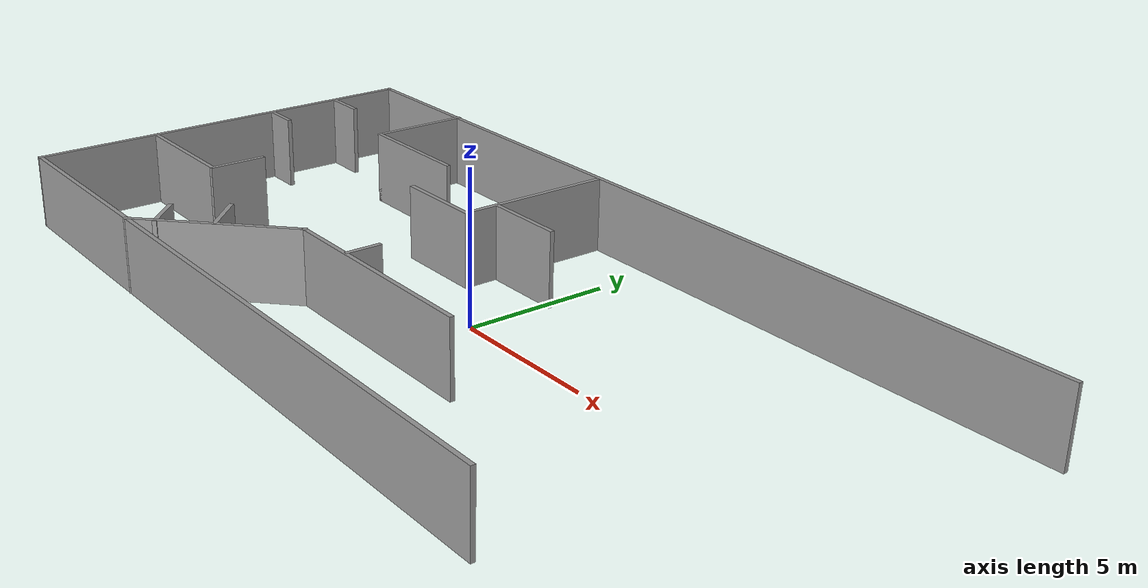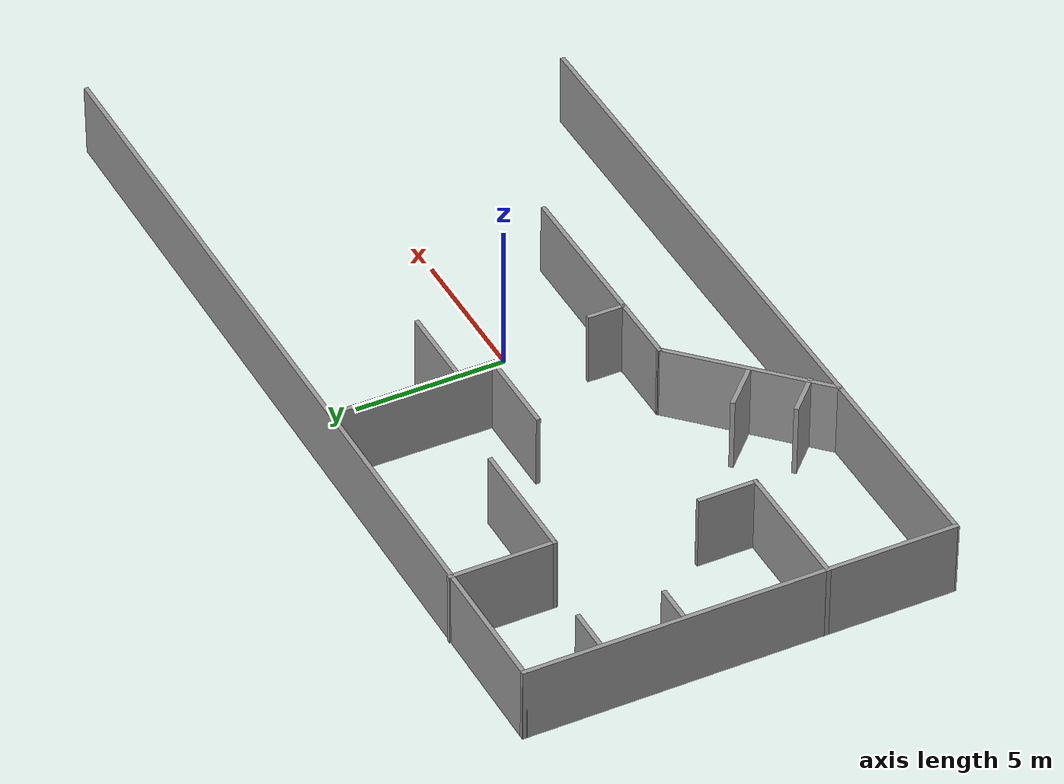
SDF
<sdf version="1.7">
 <model name="environment2">
  <link name="Wall_1">
   <pose>-0.014934 7.01964 0 0 -0 0</pose>
   <visual name="Wall_1_Visual">
    <pose>0 0 1.25 0 -0 0</pose>
    <geometry><box><size>30.5 0.15 2.5</size></box></geometry>
    <material>
     <script><uri>file://media/materials/scripts/gazebo.material</uri><name>Gazebo/Grey</name></script>
     <ambient>1 1 1 1</ambient>
     <shader type="pixel"/>
    </material>
    <meta><layer>0</layer></meta>
   </visual>
   <collision name="Wall_1_Collision">
    <pose>0 0 1.25 0 -0 0</pose>
    <geometry><box><size>30.5 0.15 2.5</size></box></geometry>
    <surface>
     <friction>
      <ode><mu>1</mu><mu2>1</mu2><fdir1>0 0 0</fdir1><slip1>0</slip1><slip2>0</slip2></ode>
      <torsional>
       <coefficient>1</coefficient>
       <patch_radius>0</patch_radius>
       <surface_radius>0</surface_radius>
       <use_patch_radius>1</use_patch_radius>
       <ode><slip>0</slip></ode>
      </torsional>
     </friction>
     <bounce><restitution_coefficient>0</restitution_coefficient><threshold>1e+06</threshold></bounce>
     <contact>
      <collide_without_contact>0</collide_without_contact>
      <collide_without_contact_bitmask>1</collide_without_contact_bitmask>
      <collide_bitmask>1</collide_bitmask>
      <ode>
       <soft_cfm>0</soft_cfm>
       <soft_erp>0.2</soft_erp>
       <kp>1e+13</kp>
       <kd>1</kd>
       <max_vel>0.01</max_vel>
       <min_depth>0</min_depth>
      </ode>
      <bullet>
       <split_impulse>1</split_impulse>
       <split_impulse_penetration_threshold>-0.01</split_impulse_penetration_threshold>
       <soft_cfm>0</soft_cfm>
       <soft_erp>0.2</soft_erp>
       <kp>1e+13</kp>
       <kd>1</kd>
      </bullet>
     </contact>
    </surface>
   </collision>
  </link>
  <link name="Wall_10">
   <pose>-15.1867 0.007115 0 0 0 -1.57033</pose>
   <visual name="Wall_10_Visual">
    <pose>0 0 1.25 0 -0 0</pose>
    <geometry><box><size>14.1751 0.15 2.5</size></box></geometry>
    <material>
     <script><uri>file://media/materials/scripts/gazebo.material</uri><name>Gazebo/Grey</name></script>
     <ambient>1 1 1 1</ambient>
     <shader type="pixel"/>
    </material>
    <meta><layer>0</layer></meta>
   </visual>
   <collision name="Wall_10_Collision">
    <pose>0 0 1.25 0 -0 0</pose>
    <geometry><box><size>14.1751 0.15 2.5</size></box></geometry>
    <surface>
     <friction>
      <ode><mu>1</mu><mu2>1</mu2><fdir1>0 0 0</fdir1><slip1>0</slip1><slip2>0</slip2></ode>
      <torsional>
       <coefficient>1</coefficient>
       <patch_radius>0</patch_radius>
       <surface_radius>0</surface_radius>
       <use_patch_radius>1</use_patch_radius>
       <ode><slip>0</slip></ode>
      </torsional>
     </friction>
     <bounce><restitution_coefficient>0</restitution_coefficient><threshold>1e+06</threshold></bounce>
     <contact>
      <collide_without_contact>0</collide_without_contact>
      <collide_without_contact_bitmask>1</collide_without_contact_bitmask>
      <collide_bitmask>1</collide_bitmask>
      <ode>
       <soft_cfm>0</soft_cfm>
       <soft_erp>0.2</soft_erp>
       <kp>1e+13</kp>
       <kd>1</kd>
       <max_vel>0.01</max_vel>
       <min_depth>0</min_depth>
      </ode>
      <bullet>
       <split_impulse>1</split_impulse>
       <split_impulse_penetration_threshold>-0.01</split_impulse_penetration_threshold>
       <soft_cfm>0</soft_cfm>
       <soft_erp>0.2</soft_erp>
       <kp>1e+13</kp>
       <kd>1</kd>
      </bullet>
     </contact>
    </surface>
   </collision>
  </link>
  <link name="Wall_13">
   <pose>-10.5995 5.38344 0 0 0 -1.5708</pose>
   <visual name="Wall_13_Visual">
    <pose>0 0 1.25 0 -0 0</pose>
    <geometry><box><size>3.5 0.15 2.5</size></box></geometry>
    <material>
     <script><uri>file://media/materials/scripts/gazebo.material</uri><name>Gazebo/Grey</name></script>
     <ambient>1 1 1 1</ambient>
     <shader type="pixel"/>
    </material>
    <meta><layer>0</layer></meta>
   </visual>
   <collision name="Wall_13_Collision">
    <pose>0 0 1.25 0 -0 0</pose>
    <geometry><box><size>3.5 0.15 2.5</size></box></geometry>
    <surface>
     <friction>
      <ode><mu>1</mu><mu2>1</mu2><fdir1>0 0 0</fdir1><slip1>0</slip1><slip2>0</slip2></ode>
      <torsional>
       <coefficient>1</coefficient>
       <patch_radius>0</patch_radius>
       <surface_radius>0</surface_radius>
       <use_patch_radius>1</use_patch_radius>
       <ode><slip>0</slip></ode>
      </torsional>
     </friction>
     <bounce><restitution_coefficient>0</restitution_coefficient><threshold>1e+06</threshold></bounce>
     <contact>
      <collide_without_contact>0</collide_without_contact>
      <collide_without_contact_bitmask>1</collide_without_contact_bitmask>
      <collide_bitmask>1</collide_bitmask>
      <ode>
       <soft_cfm>0</soft_cfm>
       <soft_erp>0.2</soft_erp>
       <kp>1e+13</kp>
       <kd>1</kd>
       <max_vel>0.01</max_vel>
       <min_depth>0</min_depth>
      </ode>
      <bullet>
       <split_impulse>1</split_impulse>
       <split_impulse_penetration_threshold>-0.01</split_impulse_penetration_threshold>
       <soft_cfm>0</soft_cfm>
       <soft_erp>0.2</soft_erp>
       <kp>1e+13</kp>
       <kd>1</kd>
      </bullet>
     </contact>
    </surface>
   </collision>
  </link>
  <link name="Wall_14">
   <pose>-8.5495 3.70844 0 0 -0 0</pose>
   <visual name="Wall_14_Visual">
    <pose>0 0 1.25 0 -0 0</pose>
    <geometry><box><size>4.25 0.15 2.5</size></box></geometry>
    <material>
     <script><uri>file://media/materials/scripts/gazebo.material</uri><name>Gazebo/Grey</name></script>
     <ambient>1 1 1 1</ambient>
     <shader type="pixel"/>
    </material>
    <meta><layer>0</layer></meta>
   </visual>
   <collision name="Wall_14_Collision">
    <pose>0 0 1.25 0 -0 0</pose>
    <geometry><box><size>4.25 0.15 2.5</size></box></geometry>
    <surface>
     <friction>
      <ode><mu>1</mu><mu2>1</mu2><fdir1>0 0 0</fdir1><slip1>0</slip1><slip2>0</slip2></ode>
      <torsional>
       <coefficient>1</coefficient>
       <patch_radius>0</patch_radius>
       <surface_radius>0</surface_radius>
       <use_patch_radius>1</use_patch_radius>
       <ode><slip>0</slip></ode>
      </torsional>
     </friction>
     <bounce><restitution_coefficient>0</restitution_coefficient><threshold>1e+06</threshold></bounce>
     <contact>
      <collide_without_contact>0</collide_without_contact>
      <collide_without_contact_bitmask>1</collide_without_contact_bitmask>
      <collide_bitmask>1</collide_bitmask>
      <ode>
       <soft_cfm>0</soft_cfm>
       <soft_erp>0.2</soft_erp>
       <kp>1e+13</kp>
       <kd>1</kd>
       <max_vel>0.01</max_vel>
       <min_depth>0</min_depth>
      </ode>
      <bullet>
       <split_impulse>1</split_impulse>
       <split_impulse_penetration_threshold>-0.01</split_impulse_penetration_threshold>
       <soft_cfm>0</soft_cfm>
       <soft_erp>0.2</soft_erp>
       <kp>1e+13</kp>
       <kd>1</kd>
      </bullet>
     </contact>
    </surface>
   </collision>
  </link>
  <link name="Wall_16">
   <pose>-2.52368 4.32226 0 0 0 -1.5708</pose>
   <visual name="Wall_16_Visual">
    <pose>0 0 1.25 0 -0 0</pose>
    <geometry><box><size>5.5 0.15 2.5</size></box></geometry>
    <material>
     <script><uri>file://media/materials/scripts/gazebo.material</uri><name>Gazebo/Grey</name></script>
     <ambient>1 1 1 1</ambient>
     <shader type="pixel"/>
    </material>
    <meta><layer>0</layer></meta>
   </visual>
   <collision name="Wall_16_Collision">
    <pose>0 0 1.25 0 -0 0</pose>
    <geometry><box><size>5.5 0.15 2.5</size></box></geometry>
    <surface>
     <friction>
      <ode><mu>1</mu><mu2>1</mu2><fdir1>0 0 0</fdir1><slip1>0</slip1><slip2>0</slip2></ode>
      <torsional>
       <coefficient>1</coefficient>
       <patch_radius>0</patch_radius>
       <surface_radius>0</surface_radius>
       <use_patch_radius>1</use_patch_radius>
       <ode><slip>0</slip></ode>
      </torsional>
     </friction>
     <bounce><restitution_coefficient>0</restitution_coefficient><threshold>1e+06</threshold></bounce>
     <contact>
      <collide_without_contact>0</collide_without_contact>
      <collide_without_contact_bitmask>1</collide_without_contact_bitmask>
      <collide_bitmask>1</collide_bitmask>
      <ode>
       <soft_cfm>0</soft_cfm>
       <soft_erp>0.2</soft_erp>
       <kp>1e+13</kp>
       <kd>1</kd>
       <max_vel>0.01</max_vel>
       <min_depth>0</min_depth>
      </ode>
      <bullet>
       <split_impulse>1</split_impulse>
       <split_impulse_penetration_threshold>-0.01</split_impulse_penetration_threshold>
       <soft_cfm>0</soft_cfm>
       <soft_erp>0.2</soft_erp>
       <kp>1e+13</kp>
       <kd>1</kd>
      </bullet>
     </contact>
    </surface>
   </collision>
  </link>
  <link name="Wall_17">
   <pose>-3.97927 1.64726 0 0 -0 3.14159</pose>
   <visual name="Wall_17_Visual">
    <pose>0 0 1.25 0 -0 0</pose>
    <geometry><box><size>3.06118 0.15 2.5</size></box></geometry>
    <material>
     <script><uri>file://media/materials/scripts/gazebo.material</uri><name>Gazebo/Grey</name></script>
     <ambient>1 1 1 1</ambient>
     <shader type="pixel"/>
    </material>
    <meta><layer>0</layer></meta>
   </visual>
   <collision name="Wall_17_Collision">
    <pose>0 0 1.25 0 -0 0</pose>
    <geometry><box><size>3.06118 0.15 2.5</size></box></geometry>
    <surface>
     <friction>
      <ode><mu>1</mu><mu2>1</mu2><fdir1>0 0 0</fdir1><slip1>0</slip1><slip2>0</slip2></ode>
      <torsional>
       <coefficient>1</coefficient>
       <patch_radius>0</patch_radius>
       <surface_radius>0</surface_radius>
       <use_patch_radius>1</use_patch_radius>
       <ode><slip>0</slip></ode>
      </torsional>
     </friction>
     <bounce><restitution_coefficient>0</restitution_coefficient><threshold>1e+06</threshold></bounce>
     <contact>
      <collide_without_contact>0</collide_without_contact>
      <collide_without_contact_bitmask>1</collide_without_contact_bitmask>
      <collide_bitmask>1</collide_bitmask>
      <ode>
       <soft_cfm>0</soft_cfm>
       <soft_erp>0.2</soft_erp>
       <kp>1e+13</kp>
       <kd>1</kd>
       <max_vel>0.01</max_vel>
       <min_depth>0</min_depth>
      </ode>
      <bullet>
       <split_impulse>1</split_impulse>
       <split_impulse_penetration_threshold>-0.01</split_impulse_penetration_threshold>
       <soft_cfm>0</soft_cfm>
       <soft_erp>0.2</soft_erp>
       <kp>1e+13</kp>
       <kd>1</kd>
      </bullet>
     </contact>
    </surface>
   </collision>
  </link>
  <link name="Wall_20">
   <pose>-13.013 -2.76102 0 0 -0 0</pose>
   <visual name="Wall_20_Visual">
    <pose>0 0 1.25 0 -0 0</pose>
    <geometry><box><size>4.5 0.15 2.5</size></box></geometry>
    <material>
     <script><uri>file://media/materials/scripts/gazebo.material</uri><name>Gazebo/Grey</name></script>
     <ambient>1 1 1 1</ambient>
     <shader type="pixel"/>
    </material>
    <meta><layer>0</layer></meta>
   </visual>
   <collision name="Wall_20_Collision">
    <pose>0 0 1.25 0 -0 0</pose>
    <geometry><box><size>4.5 0.15 2.5</size></box></geometry>
    <surface>
     <friction>
      <ode><mu>1</mu><mu2>1</mu2><fdir1>0 0 0</fdir1><slip1>0</slip1><slip2>0</slip2></ode>
      <torsional>
       <coefficient>1</coefficient>
       <patch_radius>0</patch_radius>
       <surface_radius>0</surface_radius>
       <use_patch_radius>1</use_patch_radius>
       <ode><slip>0</slip></ode>
      </torsional>
     </friction>
     <bounce><restitution_coefficient>0</restitution_coefficient><threshold>1e+06</threshold></bounce>
     <contact>
      <collide_without_contact>0</collide_without_contact>
      <collide_without_contact_bitmask>1</collide_without_contact_bitmask>
      <collide_bitmask>1</collide_bitmask>
      <ode>
       <soft_cfm>0</soft_cfm>
       <soft_erp>0.2</soft_erp>
       <kp>1e+13</kp>
       <kd>1</kd>
       <max_vel>0.01</max_vel>
       <min_depth>0</min_depth>
      </ode>
      <bullet>
       <split_impulse>1</split_impulse>
       <split_impulse_penetration_threshold>-0.01</split_impulse_penetration_threshold>
       <soft_cfm>0</soft_cfm>
       <soft_erp>0.2</soft_erp>
       <kp>1e+13</kp>
       <kd>1</kd>
      </bullet>
     </contact>
    </surface>
   </collision>
  </link>
  <link name="Wall_21">
   <pose>-10.838 -1.83602 0 0 -0 1.5708</pose>
   <visual name="Wall_21_Visual">
    <pose>0 0 1.25 0 -0 0</pose>
    <geometry><box><size>2 0.15 2.5</size></box></geometry>
    <material>
     <script><uri>file://media/materials/scripts/gazebo.material</uri><name>Gazebo/Grey</name></script>
     <ambient>1 1 1 1</ambient>
     <shader type="pixel"/>
    </material>
    <meta><layer>0</layer></meta>
   </visual>
   <collision name="Wall_21_Collision">
    <pose>0 0 1.25 0 -0 0</pose>
    <geometry><box><size>2 0.15 2.5</size></box></geometry>
    <surface>
     <friction>
      <ode><mu>1</mu><mu2>1</mu2><fdir1>0 0 0</fdir1><slip1>0</slip1><slip2>0</slip2></ode>
      <torsional>
       <coefficient>1</coefficient>
       <patch_radius>0</patch_radius>
       <surface_radius>0</surface_radius>
       <use_patch_radius>1</use_patch_radius>
       <ode><slip>0</slip></ode>
      </torsional>
     </friction>
     <bounce><restitution_coefficient>0</restitution_coefficient><threshold>1e+06</threshold></bounce>
     <contact>
      <collide_without_contact>0</collide_without_contact>
      <collide_without_contact_bitmask>1</collide_without_contact_bitmask>
      <collide_bitmask>1</collide_bitmask>
      <ode>
       <soft_cfm>0</soft_cfm>
       <soft_erp>0.2</soft_erp>
       <kp>1e+13</kp>
       <kd>1</kd>
       <max_vel>0.01</max_vel>
       <min_depth>0</min_depth>
      </ode>
      <bullet>
       <split_impulse>1</split_impulse>
       <split_impulse_penetration_threshold>-0.01</split_impulse_penetration_threshold>
       <soft_cfm>0</soft_cfm>
       <soft_erp>0.2</soft_erp>
       <kp>1e+13</kp>
       <kd>1</kd>
      </bullet>
     </contact>
    </surface>
   </collision>
  </link>
  <link name="Wall_23">
   <pose>-6.20298 -5.03317 0 0 -0 0.785398</pose>
   <visual name="Wall_23_Visual">
    <pose>0 0 1.25 0 -0 0</pose>
    <geometry><box><size>5.75 0.15 2.5</size></box></geometry>
    <material>
     <script><uri>file://media/materials/scripts/gazebo.material</uri><name>Gazebo/Grey</name></script>
     <ambient>1 1 1 1</ambient>
     <shader type="pixel"/>
    </material>
    <meta><layer>0</layer></meta>
   </visual>
   <collision name="Wall_23_Collision">
    <pose>0 0 1.25 0 -0 0</pose>
    <geometry><box><size>5.75 0.15 2.5</size></box></geometry>
    <surface>
     <friction>
      <ode><mu>1</mu><mu2>1</mu2><fdir1>0 0 0</fdir1><slip1>0</slip1><slip2>0</slip2></ode>
      <torsional>
       <coefficient>1</coefficient>
       <patch_radius>0</patch_radius>
       <surface_radius>0</surface_radius>
       <use_patch_radius>1</use_patch_radius>
       <ode><slip>0</slip></ode>
      </torsional>
     </friction>
     <bounce><restitution_coefficient>0</restitution_coefficient><threshold>1e+06</threshold></bounce>
     <contact>
      <collide_without_contact>0</collide_without_contact>
      <collide_without_contact_bitmask>1</collide_without_contact_bitmask>
      <collide_bitmask>1</collide_bitmask>
      <ode>
       <soft_cfm>0</soft_cfm>
       <soft_erp>0.2</soft_erp>
       <kp>1e+13</kp>
       <kd>1</kd>
       <max_vel>0.01</max_vel>
       <min_depth>0</min_depth>
      </ode>
      <bullet>
       <split_impulse>1</split_impulse>
       <split_impulse_penetration_threshold>-0.01</split_impulse_penetration_threshold>
       <soft_cfm>0</soft_cfm>
       <soft_erp>0.2</soft_erp>
       <kp>1e+13</kp>
       <kd>1</kd>
      </bullet>
     </contact>
    </surface>
   </collision>
  </link>
  <link name="Wall_25">
   <pose>-0.423078 -3.05327 0 0 -0 0</pose>
   <visual name="Wall_25_Visual">
    <pose>0 0 1.25 0 -0 0</pose>
    <geometry><box><size>7.75 0.15 2.5</size></box></geometry>
    <material>
     <script><uri>file://media/materials/scripts/gazebo.material</uri><name>Gazebo/Grey</name></script>
     <ambient>1 1 1 1</ambient>
     <shader type="pixel"/>
    </material>
    <meta><layer>0</layer></meta>
   </visual>
   <collision name="Wall_25_Collision">
    <pose>0 0 1.25 0 -0 0</pose>
    <geometry><box><size>7.75 0.15 2.5</size></box></geometry>
    <surface>
     <friction>
      <ode><mu>1</mu><mu2>1</mu2><fdir1>0 0 0</fdir1><slip1>0</slip1><slip2>0</slip2></ode>
      <torsional>
       <coefficient>1</coefficient>
       <patch_radius>0</patch_radius>
       <surface_radius>0</surface_radius>
       <use_patch_radius>1</use_patch_radius>
       <ode><slip>0</slip></ode>
      </torsional>
     </friction>
     <bounce><restitution_coefficient>0</restitution_coefficient><threshold>1e+06</threshold></bounce>
     <contact>
      <collide_without_contact>0</collide_without_contact>
      <collide_without_contact_bitmask>1</collide_without_contact_bitmask>
      <collide_bitmask>1</collide_bitmask>
      <ode>
       <soft_cfm>0</soft_cfm>
       <soft_erp>0.2</soft_erp>
       <kp>1e+13</kp>
       <kd>1</kd>
       <max_vel>0.01</max_vel>
       <min_depth>0</min_depth>
      </ode>
      <bullet>
       <split_impulse>1</split_impulse>
       <split_impulse_penetration_threshold>-0.01</split_impulse_penetration_threshold>
       <soft_cfm>0</soft_cfm>
       <soft_erp>0.2</soft_erp>
       <kp>1e+13</kp>
       <kd>1</kd>
      </bullet>
     </contact>
    </surface>
   </collision>
  </link>
  <link name="Wall_4">
   <pose>-2.66812 -7.01698 0 0 -0 3.14067</pose>
   <visual name="Wall_4_Visual">
    <pose>0 0 1.25 0 -0 0</pose>
    <geometry><box><size>25.1806 0.15 2.5</size></box></geometry>
    <material>
     <script><uri>file://media/materials/scripts/gazebo.material</uri><name>Gazebo/Grey</name></script>
     <ambient>1 1 1 1</ambient>
     <shader type="pixel"/>
    </material>
    <meta><layer>0</layer></meta>
   </visual>
   <collision name="Wall_4_Collision">
    <pose>0 0 1.25 0 -0 0</pose>
    <geometry><box><size>25.1806 0.15 2.5</size></box></geometry>
    <surface>
     <friction>
      <ode><mu>1</mu><mu2>1</mu2><fdir1>0 0 0</fdir1><slip1>0</slip1><slip2>0</slip2></ode>
      <torsional>
       <coefficient>1</coefficient>
       <patch_radius>0</patch_radius>
       <surface_radius>0</surface_radius>
       <use_patch_radius>1</use_patch_radius>
       <ode><slip>0</slip></ode>
      </torsional>
     </friction>
     <bounce><restitution_coefficient>0</restitution_coefficient><threshold>1e+06</threshold></bounce>
     <contact>
      <collide_without_contact>0</collide_without_contact>
      <collide_without_contact_bitmask>1</collide_without_contact_bitmask>
      <collide_bitmask>1</collide_bitmask>
      <ode>
       <soft_cfm>0</soft_cfm>
       <soft_erp>0.2</soft_erp>
       <kp>1e+13</kp>
       <kd>1</kd>
       <max_vel>0.01</max_vel>
       <min_depth>0</min_depth>
      </ode>
      <bullet>
       <split_impulse>1</split_impulse>
       <split_impulse_penetration_threshold>-0.01</split_impulse_penetration_threshold>
       <soft_cfm>0</soft_cfm>
       <soft_erp>0.2</soft_erp>
       <kp>1e+13</kp>
       <kd>1</kd>
      </bullet>
     </contact>
    </surface>
   </collision>
  </link>
  <link name="Wall_71">
   <pose>-1.13015 2.83133 0 0 -0 0</pose>
   <visual name="Wall_71_Visual">
    <pose>0 0 1.25 0 -0 0</pose>
    <geometry><box><size>2.75 0.15 2.5</size></box></geometry>
    <material>
     <script><uri>file://media/materials/scripts/gazebo.material</uri><name>Gazebo/Grey</name></script>
     <ambient>1 1 1 1</ambient>
     <shader type="pixel"/>
    </material>
    <meta><layer>0</layer></meta>
   </visual>
   <collision name="Wall_71_Collision">
    <pose>0 0 1.25 0 -0 0</pose>
    <geometry><box><size>2.75 0.15 2.5</size></box></geometry>
    <surface>
     <friction>
      <ode><mu>1</mu><mu2>1</mu2><fdir1>0 0 0</fdir1><slip1>0</slip1><slip2>0</slip2></ode>
      <torsional>
       <coefficient>1</coefficient>
       <patch_radius>0</patch_radius>
       <surface_radius>0</surface_radius>
       <use_patch_radius>1</use_patch_radius>
       <ode><slip>0</slip></ode>
      </torsional>
     </friction>
     <bounce><restitution_coefficient>0</restitution_coefficient><threshold>1e+06</threshold></bounce>
     <contact>
      <collide_without_contact>0</collide_without_contact>
      <collide_without_contact_bitmask>1</collide_without_contact_bitmask>
      <collide_bitmask>1</collide_bitmask>
      <ode>
       <soft_cfm>0</soft_cfm>
       <soft_erp>0.2</soft_erp>
       <kp>1e+13</kp>
       <kd>1</kd>
       <max_vel>0.01</max_vel>
       <min_depth>0</min_depth>
      </ode>
      <bullet>
       <split_impulse>1</split_impulse>
       <split_impulse_penetration_threshold>-0.01</split_impulse_penetration_threshold>
       <soft_cfm>0</soft_cfm>
       <soft_erp>0.2</soft_erp>
       <kp>1e+13</kp>
       <kd>1</kd>
      </bullet>
     </contact>
    </surface>
   </collision>
  </link>
  <link name="Wall_73">
   <pose>-1.90247 -2.45834 0 0 -0 1.5708</pose>
   <visual name="Wall_73_Visual">
    <pose>0 0 1.25 0 -0 0</pose>
    <geometry><box><size>1.25 0.15 2.5</size></box></geometry>
    <material>
     <script><uri>file://media/materials/scripts/gazebo.material</uri><name>Gazebo/Grey</name></script>
     <ambient>1 1 1 1</ambient>
     <shader type="pixel"/>
    </material>
    <meta><layer>0</layer></meta>
   </visual>
   <collision name="Wall_73_Collision">
    <pose>0 0 1.25 0 -0 0</pose>
    <geometry><box><size>1.25 0.15 2.5</size></box></geometry>
    <surface>
     <friction>
      <ode><mu>1</mu><mu2>1</mu2><fdir1>0 0 0</fdir1><slip1>0</slip1><slip2>0</slip2></ode>
      <torsional>
       <coefficient>1</coefficient>
       <patch_radius>0</patch_radius>
       <surface_radius>0</surface_radius>
       <use_patch_radius>1</use_patch_radius>
       <ode><slip>0</slip></ode>
      </torsional>
     </friction>
     <bounce><restitution_coefficient>0</restitution_coefficient><threshold>1e+06</threshold></bounce>
     <contact>
      <collide_without_contact>0</collide_without_contact>
      <collide_without_contact_bitmask>1</collide_without_contact_bitmask>
      <collide_bitmask>1</collide_bitmask>
      <ode>
       <soft_cfm>0</soft_cfm>
       <soft_erp>0.2</soft_erp>
       <kp>1e+13</kp>
       <kd>1</kd>
       <max_vel>0.01</max_vel>
       <min_depth>0</min_depth>
      </ode>
      <bullet>
       <split_impulse>1</split_impulse>
       <split_impulse_penetration_threshold>-0.01</split_impulse_penetration_threshold>
       <soft_cfm>0</soft_cfm>
       <soft_erp>0.2</soft_erp>
       <kp>1e+13</kp>
       <kd>1</kd>
      </bullet>
     </contact>
    </surface>
   </collision>
  </link>
  <link name="Wall_77">
   <pose>-6.79514 -4.44785 0 0 -0 2.35619</pose>
   <visual name="Wall_77_Visual">
    <pose>0 0 1.25 0 -0 0</pose>
    <geometry><box><size>1.75 0.15 2.5</size></box></geometry>
    <material>
     <script><uri>file://media/materials/scripts/gazebo.material</uri><name>Gazebo/Grey</name></script>
     <ambient>1 1 1 1</ambient>
     <shader type="pixel"/>
    </material>
    <meta><layer>0</layer></meta>
   </visual>
   <collision name="Wall_77_Collision">
    <pose>0 0 1.25 0 -0 0</pose>
    <geometry><box><size>1.75 0.15 2.5</size></box></geometry>
    <surface>
     <friction>
      <ode><mu>1</mu><mu2>1</mu2><fdir1>0 0 0</fdir1><slip1>0</slip1><slip2>0</slip2></ode>
      <torsional>
       <coefficient>1</coefficient>
       <patch_radius>0</patch_radius>
       <surface_radius>0</surface_radius>
       <use_patch_radius>1</use_patch_radius>
       <ode><slip>0</slip></ode>
      </torsional>
     </friction>
     <bounce><restitution_coefficient>0</restitution_coefficient><threshold>1e+06</threshold></bounce>
     <contact>
      <collide_without_contact>0</collide_without_contact>
      <collide_without_contact_bitmask>1</collide_without_contact_bitmask>
      <collide_bitmask>1</collide_bitmask>
      <ode>
       <soft_cfm>0</soft_cfm>
       <soft_erp>0.2</soft_erp>
       <kp>1e+13</kp>
       <kd>1</kd>
       <max_vel>0.01</max_vel>
       <min_depth>0</min_depth>
      </ode>
      <bullet>
       <split_impulse>1</split_impulse>
       <split_impulse_penetration_threshold>-0.01</split_impulse_penetration_threshold>
       <soft_cfm>0</soft_cfm>
       <soft_erp>0.2</soft_erp>
       <kp>1e+13</kp>
       <kd>1</kd>
      </bullet>
     </contact>
    </surface>
   </collision>
  </link>
  <link name="Wall_79">
   <pose>-7.97319 -5.90821 0 0 -0 2.35619</pose>
   <visual name="Wall_79_Visual">
    <pose>0 0 1.25 0 -0 0</pose>
    <geometry><box><size>1.5 0.15 2.5</size></box></geometry>
    <material>
     <script><uri>file://media/materials/scripts/gazebo.material</uri><name>Gazebo/Grey</name></script>
     <ambient>1 1 1 1</ambient>
     <shader type="pixel"/>
    </material>
    <meta><layer>0</layer></meta>
   </visual>
   <collision name="Wall_79_Collision">
    <pose>0 0 1.25 0 -0 0</pose>
    <geometry><box><size>1.5 0.15 2.5</size></box></geometry>
    <surface>
     <friction>
      <ode><mu>1</mu><mu2>1</mu2><fdir1>0 0 0</fdir1><slip1>0</slip1><slip2>0</slip2></ode>
      <torsional>
       <coefficient>1</coefficient>
       <patch_radius>0</patch_radius>
       <surface_radius>0</surface_radius>
       <use_patch_radius>1</use_patch_radius>
       <ode><slip>0</slip></ode>
      </torsional>
     </friction>
     <bounce><restitution_coefficient>0</restitution_coefficient><threshold>1e+06</threshold></bounce>
     <contact>
      <collide_without_contact>0</collide_without_contact>
      <collide_without_contact_bitmask>1</collide_without_contact_bitmask>
      <collide_bitmask>1</collide_bitmask>
      <ode>
       <soft_cfm>0</soft_cfm>
       <soft_erp>0.2</soft_erp>
       <kp>1e+13</kp>
       <kd>1</kd>
       <max_vel>0.01</max_vel>
       <min_depth>0</min_depth>
      </ode>
      <bullet>
       <split_impulse>1</split_impulse>
       <split_impulse_penetration_threshold>-0.01</split_impulse_penetration_threshold>
       <soft_cfm>0</soft_cfm>
       <soft_erp>0.2</soft_erp>
       <kp>1e+13</kp>
       <kd>1</kd>
      </bullet>
     </contact>
    </surface>
   </collision>
  </link>
  <link name="Wall_81">
   <pose>-14.5129 1.88016 0 0 -0 0</pose>
   <visual name="Wall_81_Visual">
    <pose>0 0 1.25 0 -0 0</pose>
    <geometry><box><size>1.25 0.15 2.5</size></box></geometry>
    <material>
     <script><uri>file://media/materials/scripts/gazebo.material</uri><name>Gazebo/Grey</name></script>
     <ambient>1 1 1 1</ambient>
     <shader type="pixel"/>
    </material>
    <meta><layer>0</layer></meta>
   </visual>
   <collision name="Wall_81_Collision">
    <pose>0 0 1.25 0 -0 0</pose>
    <geometry><box><size>1.25 0.15 2.5</size></box></geometry>
    <surface>
     <friction>
      <ode><mu>1</mu><mu2>1</mu2><fdir1>0 0 0</fdir1><slip1>0</slip1><slip2>0</slip2></ode>
      <torsional>
       <coefficient>1</coefficient>
       <patch_radius>0</patch_radius>
       <surface_radius>0</surface_radius>
       <use_patch_radius>1</use_patch_radius>
       <ode><slip>0</slip></ode>
      </torsional>
     </friction>
     <bounce><restitution_coefficient>0</restitution_coefficient><threshold>1e+06</threshold></bounce>
     <contact>
      <collide_without_contact>0</collide_without_contact>
      <collide_without_contact_bitmask>1</collide_without_contact_bitmask>
      <collide_bitmask>1</collide_bitmask>
      <ode>
       <soft_cfm>0</soft_cfm>
       <soft_erp>0.2</soft_erp>
       <kp>1e+13</kp>
       <kd>1</kd>
       <max_vel>0.01</max_vel>
       <min_depth>0</min_depth>
      </ode>
      <bullet>
       <split_impulse>1</split_impulse>
       <split_impulse_penetration_threshold>-0.01</split_impulse_penetration_threshold>
       <soft_cfm>0</soft_cfm>
       <soft_erp>0.2</soft_erp>
       <kp>1e+13</kp>
       <kd>1</kd>
      </bullet>
     </contact>
    </surface>
   </collision>
  </link>
  <link name="Wall_83">
   <pose>-14.4582 4.55375 0 0 -0 0</pose>
   <visual name="Wall_83_Visual">
    <pose>0 0 1.25 0 -0 0</pose>
    <geometry><box><size>1.5 0.15 2.5</size></box></geometry>
    <material>
     <script><uri>file://media/materials/scripts/gazebo.material</uri><name>Gazebo/Grey</name></script>
     <ambient>1 1 1 1</ambient>
     <shader type="pixel"/>
    </material>
    <meta><layer>0</layer></meta>
   </visual>
   <collision name="Wall_83_Collision">
    <pose>0 0 1.25 0 -0 0</pose>
    <geometry><box><size>1.5 0.15 2.5</size></box></geometry>
    <surface>
     <friction>
      <ode><mu>1</mu><mu2>1</mu2><fdir1>0 0 0</fdir1><slip1>0</slip1><slip2>0</slip2></ode>
      <torsional>
       <coefficient>1</coefficient>
       <patch_radius>0</patch_radius>
       <surface_radius>0</surface_radius>
       <use_patch_radius>1</use_patch_radius>
       <ode><slip>0</slip></ode>
      </torsional>
     </friction>
     <bounce><restitution_coefficient>0</restitution_coefficient><threshold>1e+06</threshold></bounce>
     <contact>
      <collide_without_contact>0</collide_without_contact>
      <collide_without_contact_bitmask>1</collide_without_contact_bitmask>
      <collide_bitmask>1</collide_bitmask>
      <ode>
       <soft_cfm>0</soft_cfm>
       <soft_erp>0.2</soft_erp>
       <kp>1e+13</kp>
       <kd>1</kd>
       <max_vel>0.01</max_vel>
       <min_depth>0</min_depth>
      </ode>
      <bullet>
       <split_impulse>1</split_impulse>
       <split_impulse_penetration_threshold>-0.01</split_impulse_penetration_threshold>
       <soft_cfm>0</soft_cfm>
       <soft_erp>0.2</soft_erp>
       <kp>1e+13</kp>
       <kd>1</kd>
      </bullet>
     </contact>
    </surface>
   </collision>
  </link>
  <static>1</static>
 </model>
</sdf>
